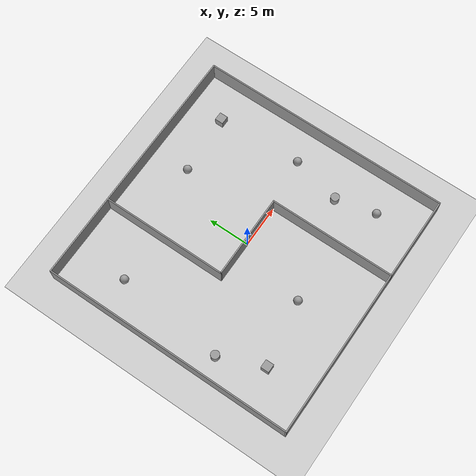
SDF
<sdf version="1.6">
 <world name="default">
  <light name="sun" type="directional">
   <pose>0 0 10 0 -0 0</pose>
   <diffuse>0.8 0.8 0.8 1</diffuse>
   <specular>0.2 0.2 0.2 1</specular>
   <attenuation>
    <range>1000</range>
    <constant>0.9</constant>
    <linear>0.01</linear>
    <quadratic>0.001</quadratic>
   </attenuation>
   <direction>-0.5 0.1 -0.9</direction>
  </light>
  <model name="ground_plane">
   <static>1</static>
   <link name="link">
    <collision name="collision">
     <geometry><plane><normal>0 0 1</normal><size>100 100</size></plane></geometry>
     <surface>
      <contact><collide_bitmask>65535</collide_bitmask></contact>
      <friction><ode><mu>100</mu><mu2>50</mu2></ode></friction>
     </surface>
    </collision>
    <visual name="visual">
     <cast_shadows>0</cast_shadows>
     <geometry><plane><normal>0 0 1</normal><size>100 100</size></plane></geometry>
     <material>
      <script><uri>file://media/materials/scripts/gazebo.material</uri><name>Gazebo/Grey</name></script>
     </material>
    </visual>
   </link>
  </model>
  <gravity>0 0 -9.8</gravity>
  <magnetic_field>6e-06 2.3e-05 -4.2e-05</magnetic_field>
  <atmosphere type="adiabatic"/>
  <physics name="default_physics" default="0" type="ode">
   <max_step_size>0.001</max_step_size>
   <real_time_factor>1</real_time_factor>
   <real_time_update_rate>1000</real_time_update_rate>
  </physics>
  <scene><ambient>0.4 0.4 0.4 1</ambient><background>0.7 0.7 0.7 1</background><shadows>1</shadows></scene>
  <spherical_coordinates>
   <surface_model>EARTH_WGS84</surface_model>
   <latitude_deg>0</latitude_deg>
   <longitude_deg>0</longitude_deg>
   <elevation>0</elevation>
   <heading_deg>0</heading_deg>
  </spherical_coordinates>
  <model name="model_2">
   <link name="Wall_10">
    <collision name="Wall_10_Collision">
     <geometry><box><size>30.15 0.15 2.5</size></box></geometry>
     <pose>0 0 1.25 0 -0 0</pose>
    </collision>
    <visual name="Wall_10_Visual">
     <pose>0 0 1.25 0 -0 0</pose>
     <geometry><box><size>30.15 0.15 2.5</size></box></geometry>
     <material>
      <script><uri>file://media/materials/scripts/gazebo.material</uri><name>Gazebo/Grey</name></script>
      <ambient>1 1 1 1</ambient>
     </material>
     <meta><layer>0</layer></meta>
    </visual>
    <pose>0 15 0 0 -0 0</pose>
   </link>
   <link name="Wall_12">
    <collision name="Wall_12_Collision">
     <geometry><box><size>30.15 0.15 2.5</size></box></geometry>
     <pose>0 0 1.25 0 -0 0</pose>
    </collision>
    <visual name="Wall_12_Visual">
     <pose>0 0 1.25 0 -0 0</pose>
     <geometry><box><size>30.15 0.15 2.5</size></box></geometry>
     <material>
      <script><uri>file://media/materials/scripts/gazebo.material</uri><name>Gazebo/Grey</name></script>
      <ambient>1 1 1 1</ambient>
     </material>
     <meta><layer>0</layer></meta>
    </visual>
    <pose>0 -15 0 0 -0 0</pose>
   </link>
   <link name="Wall_14">
    <collision name="Wall_14_Collision">
     <geometry><box><size>0.15 0.15 2.5</size></box></geometry>
     <pose>0 0 1.25 0 -0 0</pose>
    </collision>
    <visual name="Wall_14_Visual">
     <pose>0 0 1.25 0 -0 0</pose>
     <geometry><box><size>0.15 0.15 2.5</size></box></geometry>
     <material>
      <script><uri>file://media/materials/scripts/gazebo.material</uri><name>Gazebo/Grey</name></script>
      <ambient>1 1 1 1</ambient>
     </material>
     <meta><layer>0</layer></meta>
    </visual>
    <pose>15 15 0 0 -0 0</pose>
   </link>
   <link name="Wall_16">
    <collision name="Wall_16_Collision">
     <geometry><box><size>30.15 0.15 2.5</size></box></geometry>
     <pose>0 0 1.25 0 -0 0</pose>
    </collision>
    <visual name="Wall_16_Visual">
     <pose>0 0 1.25 0 -0 0</pose>
     <geometry><box><size>30.15 0.15 2.5</size></box></geometry>
     <material>
      <script><uri>file://media/materials/scripts/gazebo.material</uri><name>Gazebo/Grey</name></script>
      <ambient>1 1 1 1</ambient>
     </material>
     <meta><layer>0</layer></meta>
    </visual>
    <pose>15 0 0 0 -0 1.5708</pose>
   </link>
   <link name="Wall_18">
    <collision name="Wall_18_Collision">
     <geometry><box><size>15.15 0.15 2.5</size></box></geometry>
     <pose>0 0 1.25 0 -0 0</pose>
    </collision>
    <visual name="Wall_18_Visual">
     <pose>0 0 1.25 0 -0 0</pose>
     <geometry><box><size>15.15 0.15 2.5</size></box></geometry>
     <material>
      <script><uri>file://media/materials/scripts/gazebo.material</uri><name>Gazebo/Grey</name></script>
      <ambient>1 1 1 1</ambient>
     </material>
     <meta><layer>0</layer></meta>
    </visual>
    <pose>-5 7.5 0 0 -0 -1.5708</pose>
   </link>
   <link name="Wall_21">
    <collision name="Wall_21_Collision">
     <geometry><box><size>10.15 0.15 2.5</size></box></geometry>
     <pose>0 0 1.25 0 -0 0</pose>
    </collision>
    <visual name="Wall_21_Visual">
     <pose>0 0 1.25 0 -0 0</pose>
     <geometry><box><size>10.15 0.15 2.5</size></box></geometry>
     <material>
      <script><uri>file://media/materials/scripts/gazebo.material</uri><name>Gazebo/Grey</name></script>
      <ambient>1 1 1 1</ambient>
     </material>
     <meta><layer>0</layer></meta>
    </visual>
   </link>
   <link name="Wall_23">
    <collision name="Wall_23_Collision">
     <geometry><box><size>15.15 0.15 2.5</size></box></geometry>
     <pose>0 0 1.25 0 -0 0</pose>
    </collision>
    <visual name="Wall_23_Visual">
     <pose>0 0 1.25 0 -0 0</pose>
     <geometry><box><size>15.15 0.15 2.5</size></box></geometry>
     <material>
      <script><uri>file://media/materials/scripts/gazebo.material</uri><name>Gazebo/Grey</name></script>
      <ambient>1 1 1 1</ambient>
     </material>
     <meta><layer>0</layer></meta>
    </visual>
    <pose>5 -7.5 0 0 -0 -1.5708</pose>
   </link>
   <link name="Wall_6">
    <collision name="Wall_6_Collision">
     <geometry><box><size>30.15 0.15 2.5</size></box></geometry>
     <pose>0 0 1.25 0 -0 0</pose>
    </collision>
    <visual name="Wall_6_Visual">
     <pose>0 0 1.25 0 -0 0</pose>
     <geometry><box><size>30.15 0.15 2.5</size></box></geometry>
     <material>
      <script><uri>file://media/materials/scripts/gazebo.material</uri><name>Gazebo/Grey</name></script>
      <ambient>1 1 1 1</ambient>
     </material>
     <meta><layer>0</layer></meta>
    </visual>
    <pose>-15 0 0 0 -0 1.5708</pose>
   </link>
   <static>1</static>
  </model>
  <model name="unit_sphere">
   <pose>-10.9547 8.5463 0.5 0 -0 0</pose>
   <link name="link">
    <inertial>
     <mass>1</mass>
     <inertia><ixx>0.1</ixx><ixy>0</ixy><ixz>0</ixz><iyy>0.1</iyy><iyz>0</iyz><izz>0.1</izz></inertia>
    </inertial>
    <collision name="collision"><geometry><sphere><radius>0.5</radius></sphere></geometry></collision>
    <visual name="visual">
     <geometry><sphere><radius>0.5</radius></sphere></geometry>
     <material>
      <script><name>Gazebo/Grey</name><uri>file://media/materials/scripts/gazebo.material</uri></script>
     </material>
    </visual>
   </link>
  </model>
  <model name="unit_sphere_1">
   <pose>-2.35697 -8.1467 0.5 0 -0 0</pose>
   <link name="link">
    <inertial>
     <mass>1</mass>
     <inertia><ixx>0.1</ixx><ixy>0</ixy><ixz>0</ixz><iyy>0.1</iyy><iyz>0</iyz><izz>0.1</izz></inertia>
    </inertial>
    <collision name="collision"><geometry><sphere><radius>0.5</radius></sphere></geometry></collision>
    <visual name="visual">
     <geometry><sphere><radius>0.5</radius></sphere></geometry>
     <material>
      <script><name>Gazebo/Grey</name><uri>file://media/materials/scripts/gazebo.material</uri></script>
     </material>
    </visual>
   </link>
  </model>
  <model name="unit_sphere_2">
   <pose>3.42081 10.5115 0.5 0 -0 0</pose>
   <link name="link">
    <inertial>
     <mass>1</mass>
     <inertia><ixx>0.1</ixx><ixy>0</ixy><ixz>0</ixz><iyy>0.1</iyy><iyz>0</iyz><izz>0.1</izz></inertia>
    </inertial>
    <collision name="collision"><geometry><sphere><radius>0.5</radius></sphere></geometry></collision>
    <visual name="visual">
     <geometry><sphere><radius>0.5</radius></sphere></geometry>
     <material>
      <script><name>Gazebo/Grey</name><uri>file://media/materials/scripts/gazebo.material</uri></script>
     </material>
    </visual>
   </link>
  </model>
  <model name="unit_sphere_3">
   <pose>11.197 0.882762 0.5 0 -0 0</pose>
   <link name="link">
    <inertial>
     <mass>1</mass>
     <inertia><ixx>0.1</ixx><ixy>0</ixy><ixz>0</ixz><iyy>0.1</iyy><iyz>0</iyz><izz>0.1</izz></inertia>
    </inertial>
    <collision name="collision"><geometry><sphere><radius>0.5</radius></sphere></geometry></collision>
    <visual name="visual">
     <geometry><sphere><radius>0.5</radius></sphere></geometry>
     <material>
      <script><name>Gazebo/Grey</name><uri>file://media/materials/scripts/gazebo.material</uri></script>
     </material>
    </visual>
   </link>
  </model>
  <model name="unit_sphere_4">
   <pose>10.8721 -9.76931 0.5 0 -0 0</pose>
   <link name="link">
    <inertial>
     <mass>1</mass>
     <inertia><ixx>0.1</ixx><ixy>0</ixy><ixz>0</ixz><iyy>0.1</iyy><iyz>0</iyz><izz>0.1</izz></inertia>
    </inertial>
    <collision name="collision"><geometry><sphere><radius>0.5</radius></sphere></geometry></collision>
    <visual name="visual">
     <geometry><sphere><radius>0.5</radius></sphere></geometry>
     <material>
      <script><name>Gazebo/Grey</name><uri>file://media/materials/scripts/gazebo.material</uri></script>
     </material>
    </visual>
   </link>
  </model>
  <model name="unit_box">
   <pose>-10.2036 -9.50039 0.499995 0 1e-05 0</pose>
   <link name="link">
    <inertial>
     <mass>1</mass>
     <inertia>
      <ixx>0.166667</ixx>
      <ixy>0</ixy>
      <ixz>0</ixz>
      <iyy>0.166667</iyy>
      <iyz>0</iyz>
      <izz>0.166667</izz>
     </inertia>
    </inertial>
    <collision name="collision"><geometry><box><size>1 1 1</size></box></geometry></collision>
    <visual name="visual">
     <geometry><box><size>1 1 1</size></box></geometry>
     <material>
      <script><name>Gazebo/Grey</name><uri>file://media/materials/scripts/gazebo.material</uri></script>
     </material>
    </visual>
   </link>
  </model>
  <model name="unit_box_0">
   <pose>10.6164 10.9178 0.499995 0 1e-05 0</pose>
   <link name="link">
    <inertial>
     <mass>1</mass>
     <inertia>
      <ixx>0.166667</ixx>
      <ixy>0</ixy>
      <ixz>0</ixz>
      <iyy>0.166667</iyy>
      <iyz>0</iyz>
      <izz>0.166667</izz>
     </inertia>
    </inertial>
    <collision name="collision"><geometry><box><size>1 1 1</size></box></geometry></collision>
    <visual name="visual">
     <geometry><box><size>1 1 1</size></box></geometry>
     <material>
      <script><name>Gazebo/Grey</name><uri>file://media/materials/scripts/gazebo.material</uri></script>
     </material>
    </visual>
   </link>
  </model>
  <model name="unit_cylinder">
   <pose>-12.2864 -4.33608 0.499993 -3e-06 -4e-06 -0</pose>
   <link name="link">
    <inertial>
     <mass>1</mass>
     <inertia><ixx>0.145833</ixx><ixy>0</ixy><ixz>0</ixz><iyy>0.145833</iyy><iyz>0</iyz><izz>0.125</izz></inertia>
    </inertial>
    <collision name="collision">
     <geometry><cylinder><radius>0.5</radius><length>1</length></cylinder></geometry>
    </collision>
    <visual name="visual">
     <geometry><cylinder><radius>0.5</radius><length>1</length></cylinder></geometry>
     <material>
      <script><name>Gazebo/Grey</name><uri>file://media/materials/scripts/gazebo.material</uri></script>
     </material>
    </visual>
   </link>
  </model>
  <model name="unit_cylinder_0">
   <pose>9.77625 -5.00265 0.499997 3e-06 4e-06 -0</pose>
   <link name="link">
    <inertial>
     <mass>1</mass>
     <inertia><ixx>0.145833</ixx><ixy>0</ixy><ixz>0</ixz><iyy>0.145833</iyy><iyz>0</iyz><izz>0.125</izz></inertia>
    </inertial>
    <collision name="collision">
     <geometry><cylinder><radius>0.5</radius><length>1</length></cylinder></geometry>
    </collision>
    <visual name="visual">
     <geometry><cylinder><radius>0.5</radius><length>1</length></cylinder></geometry>
     <material>
      <script><name>Gazebo/Grey</name><uri>file://media/materials/scripts/gazebo.material</uri></script>
     </material>
    </visual>
   </link>
  </model>
 </world>
</sdf>
